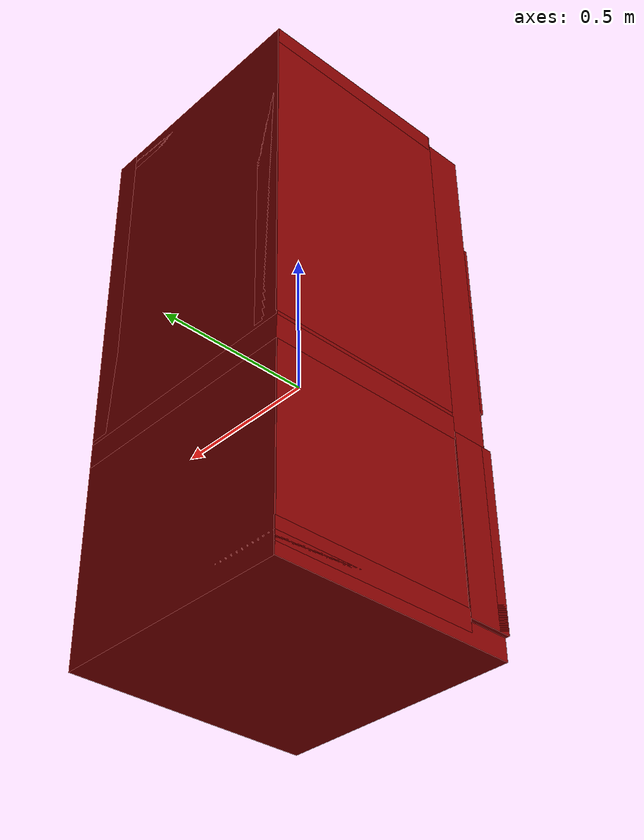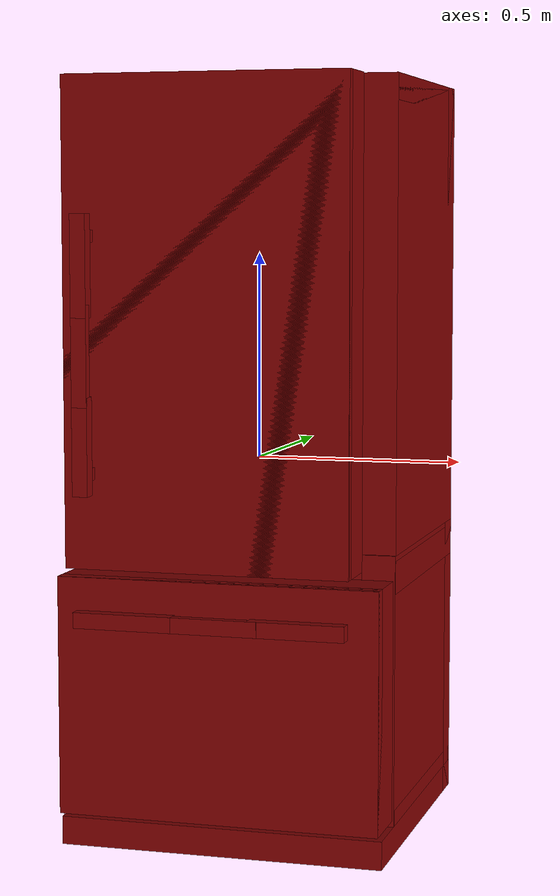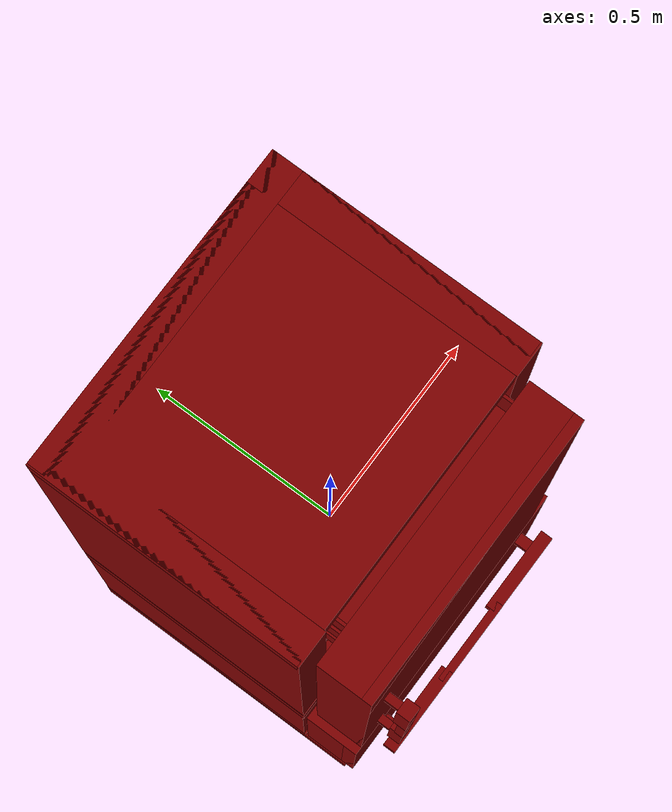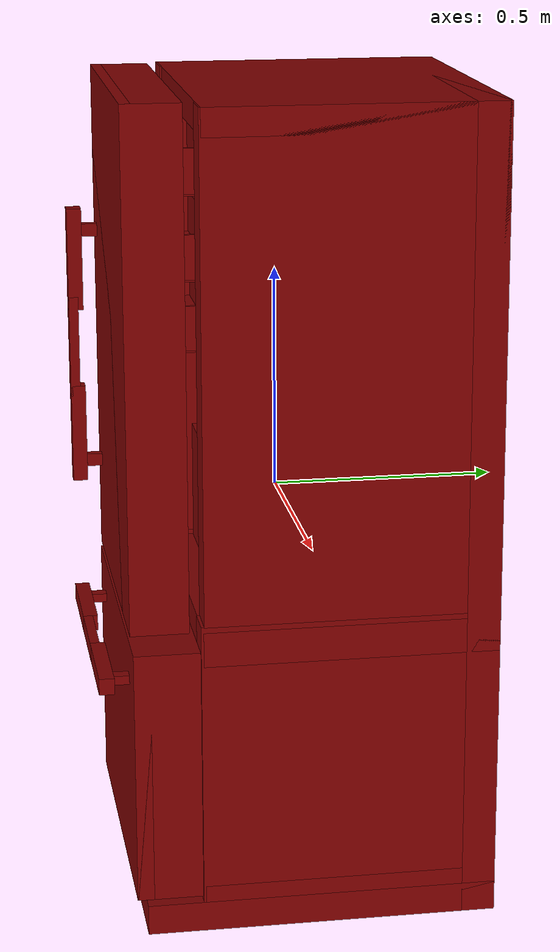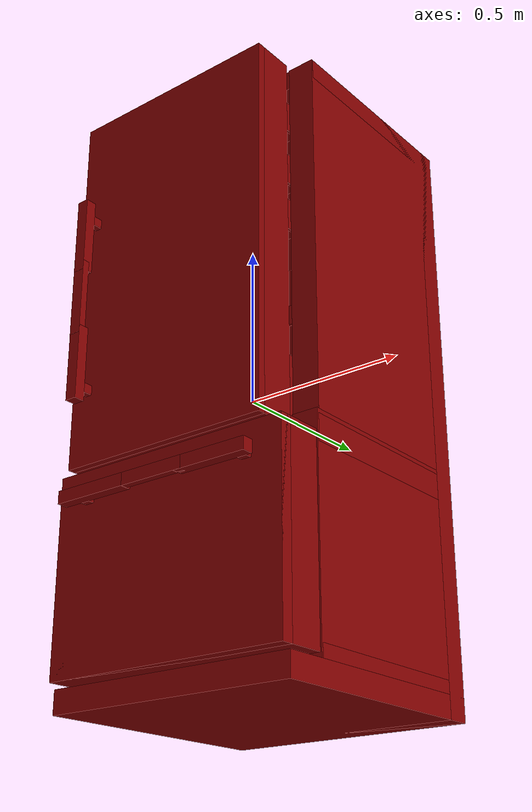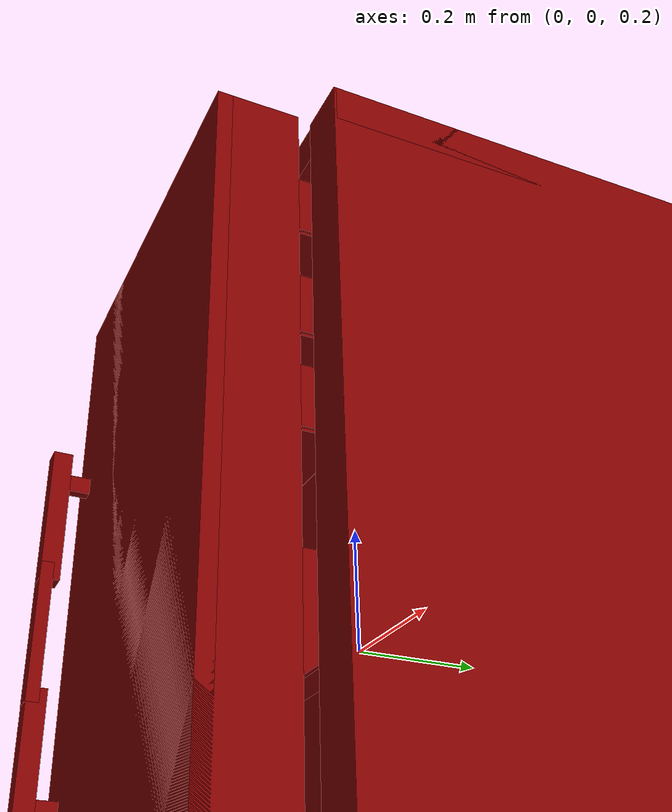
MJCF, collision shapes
<?xml version='1.0' encoding='UTF-8'?>
<mujoco model="model">
  <option timestep="0.002" gravity="0.0 0.0 -9.81"/>
  <compiler angle="radian"/>
  <asset>
    <mesh file="visuals/freezer0.obj" name="freezer0_vis"/>
    <mesh file="visuals/fridge_door.obj" name="fridge_door_vis"/>
    <mesh file="visuals/fridge_door_Clear.obj" name="fridge_door_Clear_vis"/>
    <mesh file="visuals/fridge_drawer0.obj" name="fridge_drawer0_vis"/>
    <mesh file="visuals/Body001.obj" name="Body001_vis"/>
    <mesh file="visuals/Body001_Clear.obj" name="Body001_Clear_vis"/>
    <texture file="visuals/T_BC001.png" name="Body001_material" type="2d"/>
    <material name="Body001_material" rgba="1 1 1 1.0" texture="Body001_material" shininess="0.2512328028678894" specular="0.5"/>
    <texture file="visuals/T_BC001.png" name="freezer0_material" type="2d"/>
    <material name="freezer0_material" rgba="1 1 1 1.0" texture="freezer0_material" shininess="0.2512328028678894" specular="0.5"/>
    <texture file="visuals/T_BC001.png" name="fridge_door_material" type="2d"/>
    <material name="fridge_door_material" rgba="1 1 1 1.0" texture="fridge_door_material" shininess="0.2512328028678894" specular="0.5"/>
    <material name="fridge_door_Clear_material" rgba="1.0 1.0 1.0 0.699999988079071" shininess="0.2512328028678894" specular="0.3103448502657381"/>
    <texture file="visuals/T_BC001.png" name="fridge_drawer0_material" type="2d"/>
    <material name="fridge_drawer0_material" rgba="1 1 1 1.0" texture="fridge_drawer0_material" shininess="0.2512328028678894" specular="0.3103448502657381"/>
    <material name="Body001_Clear_material" rgba="1.0 1.0 1.0 0.699999988079071" shininess="0.2512328028678894" specular="0.3103448502657381"/>
  </asset>
  <default>
    <default class="visual">
      <geom conaffinity="0" contype="0" group="1" type="mesh"/>
    </default>
    <default class="collision">
      <geom group="0" rgba="0.5 0 0 0.5"/>
    </default>
    <default class="spawn">
      <geom group="0" rgba="1 1 1 0.5" contype="0" conaffinity="0"/>
      <site group="0" rgba="1 1 1 0.5"/>
    </default>
    <default class="region">
      <geom group="1" conaffinity="0" contype="0" rgba="0 1 0 0"/>
    </default>
  </default>
  <worldbody>
    <body>
      <body name="object">
        <geom mesh="Body001_vis" type="mesh" solimp="0.998 0.998 0.001" solref="0.001 1" friction="0.95 0.3 0.1" class="visual" material="Body001_material"/>
        <geom class="collision" type="box" pos="-0.00110054 0.12030596 0.50832725" size="0.3160151541233063 0.22527329623699188 0.002585998037829995" quat="1.0 0.0 0.0 0.0"/>
        <geom class="collision" type="box" pos="-0.00110054 0.12030596 0.14084752" size="0.3160169720649719 0.22527436912059784 0.0025859600864350796" quat="1.0 0.0 0.0 0.0"/>
        <geom class="collision" type="box" pos="-0.35064101 0.11106796 0.35758087" size="0.043554212898015976 0.327478289604187 0.5575453042984009" quat="1.0 0.0 0.0 0.0"/>
        <geom class="collision" type="box" pos="0.35243601 0.11106796 0.35758084" size="0.04176001250743866 0.327478289604187 0.5575453042984009" quat="1.0 0.0 0.0 0.0"/>
        <geom class="collision" type="box" pos="0.00000017 0.11299023 0.88424820" size="0.3941958248615265 0.3255560100078583 0.030877990648150444" quat="1.0 0.0 0.0 0.0"/>
        <geom class="collision" type="box" pos="0.00000017 0.11048175 -0.25139293" size="0.3941958248615265 0.328104704618454 0.03903775289654732" quat="1.0 0.0 0.0 0.0"/>
        <geom class="collision" type="box" pos="0.00000017 0.04544089 -0.88098943" size="0.3941958248615265 0.39310532808303833 0.034136686474084854" quat="1.0 0.0 0.0 0.0"/>
        <geom class="collision" type="box" pos="0.00181954 0.40096098 0.00000009" size="0.39237648248672485 0.03758529946208 0.9151260852813721" quat="1.0 0.0 0.0 0.0"/>
        <geom class="collision" type="box" pos="-0.35244274 0.11097650 -0.52309448" size="0.0417507067322731 0.325009286403656 0.32422980666160583" quat="1.0 0.0 0.0 0.0"/>
        <geom class="collision" type="box" pos="0.35395342 0.10631333 -0.52309448" size="0.0402408167719841 0.32967355847358704 0.32423073053359985" quat="1.0 0.0 0.0 0.0"/>
        <geom class="collision" type="box" pos="0.00000017 0.11000278 -0.84313524" size="0.3941958248615265 0.32854342460632324 0.034317295998334885" quat="1.0 0.0 0.0 0.0"/>
        <body name="freezer0">
          <geom class="region" name="reg_freezer0" type="box" pos="-1.9524999999992465e-05 0.04139170000000002 -0.5684354899999999" size="0.28385485499999996 0.24976114 0.20404649999999996"/>
          <joint axis="0.0 -1.0 0.0" pos="-0.00000008 -0.06088511 -0.54664117" limited="true" name="freezer0_door_joint" range="0.0 0.5" type="slide" damping="1" frictionloss="1" armature=".01" stiffness="0.05"/>
          <geom mesh="freezer0_vis" type="mesh" solimp="0.998 0.998 0.001" solref="0.001 1" friction="0.95 0.3 0.1" class="visual" material="freezer0_material"/>
          <geom class="collision" type="box" pos="-0.00037502 -0.29713485 -0.54534519" size="0.39055630564689636 0.07307873666286469 0.28737422823905945" quat="1.0 0.0 0.0 0.0"/>
          <geom class="collision" type="box" pos="-0.00210695 0.03193348 -0.78571272" size="0.305281400680542 0.28568845987319946 0.0030836521182209253" quat="1.0 0.0 0.0 0.0"/>
          <geom class="collision" type="box" pos="0.29810229 0.03193338 -0.57235414" size="0.005081306677311659 0.2856889069080353 0.21644210815429688" quat="1.0 0.0 0.0 0.0"/>
          <geom class="collision" type="box" pos="-0.30231929 0.03193328 -0.57163990" size="0.0050813909620046616 0.2856893837451935 0.21715639531612396" quat="1.0 0.0 0.0 0.0"/>
          <geom class="collision" type="box" pos="-0.00812459 0.31262513 -0.57163990" size="0.29926446080207825 0.005011540371924639 0.21715639531612396" quat="1.0 0.0 0.0 0.0"/>
          <geom class="collision" type="box" pos="-0.00588183 -0.25345499 -0.56185263" size="0.3105520009994507 0.033676039427518845 0.2664894461631775" quat="1.0 0.0 0.0 0.0"/>
          <geom class="collision" type="box" pos="-0.00037502 -0.35173774 -0.54534519" size="0.39055630564689636 0.01847594976425171 0.28737422823905945" quat="1.0 0.0 0.0 0.0" name="freezer0_door_main"/>
          <geom class="collision" type="box" pos="0.00067618 -0.42929274 -0.34798399" size="0.11860767751932144 0.010917962528765202 0.018597321584820747" quat="1.0 0.0 0.0 0.0" name="freezer0_door_handle_main"/>
          <geom class="collision" type="box" pos="-0.27429315 -0.39009408 -0.34744543" size="0.014737782999873161 0.02149774692952633 0.010047155432403088" quat="1.0 0.0 0.0 0.0" name="freezer0_door_handle_4"/>
          <geom class="collision" type="box" pos="0.27921048 -0.39008192 -0.34744540" size="0.014737794175744057 0.021509986370801926 0.010047174990177155" quat="1.0 0.0 0.0 0.0" name="freezer0_door_handle_3"/>
          <geom class="collision" type="box" pos="-0.20664103 -0.42344714 -0.34798402" size="0.11928033828735352 0.016861364245414734 0.018597330898046494" quat="1.0 0.0 0.0 0.0" name="freezer0_door_handle_2"/>
          <geom class="collision" type="box" pos="0.21098395 -0.42295686 -0.34798399" size="0.11543532460927963 0.01686139777302742 0.01859736256301403" quat="1.0 0.0 0.0 0.0" name="freezer0_door_handle_1"/>
        </body>
        <body name="fridge_door">
          <joint axis="0.0 0.0 1.0" pos="0.30957290 -0.29716752 0.36162239" limited="true" name="fridge_door_joint" range="0.0 1.5707963267948966" type="hinge" damping="1" frictionloss="1" armature=".01" stiffness="0.05"/>
          <geom mesh="fridge_door_vis" type="mesh" solimp="0.998 0.998 0.001" solref="0.001 1" friction="0.95 0.3 0.1" class="visual" material="fridge_door_material"/>
          <geom class="collision" type="box" pos="-0.02565050 -0.30487314 0.33860013" size="0.3443422317504883 0.06534027308225632 0.5765008330345154" quat="1.0 0.0 0.0 0.0"/>
          <geom class="collision" type="box" pos="0.01169917 -0.20556875 0.71968281" size="0.2756355404853821 0.0477554053068161 0.00282800430431962" quat="1.0 0.0 0.0 0.0"/>
          <geom class="collision" type="box" pos="0.01169892 -0.15823557 0.76947832" size="0.2756098508834839 0.0033584085758775473 0.048288971185684204" quat="1.0 0.0 0.0 0.0"/>
          <geom class="collision" type="box" pos="0.01169917 -0.25219247 0.76947838" size="0.27563589811325073 0.001194413285702467 0.048295263200998306" quat="1.0 0.0 0.0 0.0"/>
          <geom class="collision" type="box" pos="0.28717229 -0.20487162 0.76947832" size="0.0037614875473082066 0.0475623793900013 0.04829087853431702" quat="1.0 0.0 0.0 0.0"/>
          <geom class="collision" type="box" pos="-0.26577035 -0.20518251 0.76947832" size="0.003705924842506647 0.047562457621097565 0.0482909269630909" quat="1.0 0.0 0.0 0.0"/>
          <geom class="collision" type="box" pos="0.01169892 -0.20556875 0.53798747" size="0.2756364047527313 0.04775580018758774 0.002827972639352083" quat="1.0 0.0 0.0 0.0"/>
          <geom class="collision" type="box" pos="0.01169917 -0.15823557 0.58778298" size="0.2756148874759674 0.003358482616022229 0.04828954115509987" quat="1.0 0.0 0.0 0.0"/>
          <geom class="collision" type="box" pos="0.01169892 -0.25219247 0.58778304" size="0.2756367623806 0.0011944229481741786 0.04829476773738861" quat="1.0 0.0 0.0 0.0"/>
          <geom class="collision" type="box" pos="0.28717229 -0.20487162 0.58778304" size="0.003761500818654895 0.047562770545482635 0.04829113557934761" quat="1.0 0.0 0.0 0.0"/>
          <geom class="collision" type="box" pos="-0.26539859 -0.20518251 0.58778304" size="0.0033341876696795225 0.0475628487765789 0.04829118773341179" quat="1.0 0.0 0.0 0.0"/>
          <geom class="collision" type="box" pos="0.01169917 -0.20537352 0.38582379" size="0.27563726902008057 0.04775619134306908 0.002827927004545927" quat="1.0 0.0 0.0 0.0"/>
          <geom class="collision" type="box" pos="0.01169892 -0.15638610 0.43561924" size="0.2756199538707733 0.003358556656166911 0.048290058970451355" quat="1.0 0.0 0.0 0.0"/>
          <geom class="collision" type="box" pos="0.01169917 -0.25096384 0.43561926" size="0.2756376266479492 0.0011944326106458902 0.04829425737261772" quat="1.0 0.0 0.0 0.0"/>
          <geom class="collision" type="box" pos="0.28717229 -0.20467638 0.43561926" size="0.0037615185137838125 0.04756316542625427 0.048291388899087906" quat="1.0 0.0 0.0 0.0"/>
          <geom class="collision" type="box" pos="-0.26539859 -0.20498728 0.43561926" size="0.003334202105179429 0.04756324365735054 0.048291441053152084" quat="1.0 0.0 0.0 0.0"/>
          <geom class="collision" type="box" pos="-0.02565050 -0.35825608 0.33860013" size="0.3443422317504883 0.011957339011132717 0.5765187740325928" quat="1.0 0.0 0.0 0.0" name="fridge_door_main"/>
          <geom class="collision" type="box" pos="-0.30540860 -0.42929283 0.26825228" size="0.018597498536109924 0.01091788150370121 0.11860646307468414" quat="1.0 0.0 0.0 0.0" name="fridge_door_handle_main"/>
          <geom class="collision" type="box" pos="-0.30487007 -0.39009423 0.54322165" size="0.010047227144241333 0.021497607231140137 0.014737635850906372" quat="1.0 0.0 0.0 0.0" name="fridge_door_handle_4"/>
          <geom class="collision" type="box" pos="-0.30486998 -0.39008198 -0.01028200" size="0.010047230869531631 0.021509822458028793 0.014737662859261036" quat="1.0 0.0 0.0 0.0" name="fridge_door_handle_3"/>
          <geom class="collision" type="box" pos="-0.30540866 -0.42344726 0.47556952" size="0.01859741099178791 0.016861284151673317 0.11927948147058487" quat="1.0 0.0 0.0 0.0" name="fridge_door_handle_2"/>
          <geom class="collision" type="box" pos="-0.30540860 -0.42295692 0.05794454" size="0.018597416579723358 0.016861317679286003 0.11543459445238113" quat="1.0 0.0 0.0 0.0" name="fridge_door_handle_1"/>
          <body name="fridge_door_Clear">
            <geom mesh="fridge_door_Clear_vis" type="mesh" solimp="0.998 0.998 0.001" solref="0.001 1" friction="0.95 0.3 0.1" class="visual" material="fridge_door_Clear_material"/>
            <geom class="collision" type="box" pos="0.01169917 -0.20556875 0.71968281" size="0.2756355404853821 0.0477554053068161 0.00282800430431962" quat="1.0 0.0 0.0 0.0"/>
            <geom class="collision" type="box" pos="0.01169892 -0.15823557 0.76947832" size="0.2756098508834839 0.0033584085758775473 0.048288971185684204" quat="1.0 0.0 0.0 0.0"/>
            <geom class="collision" type="box" pos="0.01169917 -0.25219247 0.76947838" size="0.27563589811325073 0.001194413285702467 0.048295263200998306" quat="1.0 0.0 0.0 0.0"/>
            <geom class="collision" type="box" pos="0.28717229 -0.20487162 0.76947832" size="0.0037614875473082066 0.0475623793900013 0.04829087853431702" quat="1.0 0.0 0.0 0.0"/>
            <geom class="collision" type="box" pos="-0.26577035 -0.20518251 0.76947832" size="0.003705924842506647 0.047562457621097565 0.0482909269630909" quat="1.0 0.0 0.0 0.0"/>
            <geom class="collision" type="box" pos="0.01169892 -0.20556875 0.53798747" size="0.2756364047527313 0.04775580018758774 0.002827972639352083" quat="1.0 0.0 0.0 0.0"/>
            <geom class="collision" type="box" pos="0.01169917 -0.15823557 0.58778298" size="0.2756148874759674 0.003358482616022229 0.04828954115509987" quat="1.0 0.0 0.0 0.0"/>
            <geom class="collision" type="box" pos="0.01169892 -0.25219247 0.58778304" size="0.2756367623806 0.0011944229481741786 0.04829476773738861" quat="1.0 0.0 0.0 0.0"/>
            <geom class="collision" type="box" pos="0.28717229 -0.20487162 0.58778304" size="0.003761500818654895 0.047562770545482635 0.04829113557934761" quat="1.0 0.0 0.0 0.0"/>
            <geom class="collision" type="box" pos="-0.26539859 -0.20518251 0.58778304" size="0.0033341876696795225 0.0475628487765789 0.04829118773341179" quat="1.0 0.0 0.0 0.0"/>
            <geom class="collision" type="box" pos="0.01169917 -0.20537352 0.38582379" size="0.27563726902008057 0.04775619134306908 0.002827927004545927" quat="1.0 0.0 0.0 0.0"/>
            <geom class="collision" type="box" pos="0.01169892 -0.15638610 0.43561924" size="0.2756199538707733 0.003358556656166911 0.048290058970451355" quat="1.0 0.0 0.0 0.0"/>
            <geom class="collision" type="box" pos="0.01169917 -0.25096384 0.43561926" size="0.2756376266479492 0.0011944326106458902 0.04829425737261772" quat="1.0 0.0 0.0 0.0"/>
            <geom class="collision" type="box" pos="0.28717229 -0.20467638 0.43561926" size="0.0037615185137838125 0.04756316542625427 0.048291388899087906" quat="1.0 0.0 0.0 0.0"/>
            <geom class="collision" type="box" pos="-0.26539859 -0.20498728 0.43561926" size="0.003334202105179429 0.04756324365735054 0.048291441053152084" quat="1.0 0.0 0.0 0.0"/>
          </body>
        </body>
        <body name="fridge_drawer0">
          <geom class="region" name="reg_fridge_drawer0" type="box" pos="-0.03392187499999999 0.09959784999999999 -0.07074646000000001" size="0.237554255 0.226383 0.11538429"/>
          <joint axis="0.0 -1.0 0.0" pos="-0.00359078 0.09611742 -0.06994392" limited="true" name="fridge_drawer0_joint" range="0.0 0.5" type="slide" damping="1" frictionloss="1" armature=".01" stiffness="0.05"/>
          <geom mesh="fridge_drawer0_vis" type="mesh" solimp="0.998 0.998 0.001" solref="0.001 1" friction="0.95 0.3 0.1" class="visual" material="fridge_drawer0_material"/>
          <geom class="collision" type="box" pos="-0.03224403 0.34286764 -0.07474730" size="0.2487403154373169 0.0033921748399734497 0.12481791526079178" quat="1.0 0.0 0.0 0.0"/>
          <geom class="collision" type="box" pos="-0.28370825 0.09837096 -0.07474730" size="0.004088321700692177 0.2407524585723877 0.12481740862131119" quat="1.0 0.0 0.0 0.0"/>
          <geom class="collision" type="box" pos="0.21289402 0.09837096 -0.07474730" size="0.003744961926713586 0.24075163900852203 0.12481686472892761" quat="1.0 0.0 0.0 0.0"/>
          <geom class="collision" type="box" pos="-0.03568029 0.09837096 -0.19610521" size="0.24873784184455872 0.24075078964233398 0.0032003442756831646" quat="1.0 0.0 0.0 0.0"/>
          <geom class="collision" type="box" pos="-0.03481936 -0.14457802 -0.06993171" size="0.06439434736967087 0.005427333060652018 0.03301795572042465" quat="0.9871617555618286 -0.15972371399402618 0.0 0.0"/>
          <geom class="collision" type="box" pos="-0.19242162 -0.14471734 -0.06782035" size="0.09321124106645584 0.010428482666611671 0.13916197419166565" quat="1.0 0.0 0.0 0.0"/>
          <geom class="collision" type="box" pos="-0.05735014 -0.14471734 -0.15661764" size="0.0643964558839798 0.010428446345031261 0.05014832690358162" quat="1.0 0.0 0.0 0.0"/>
          <geom class="collision" type="box" pos="-0.03481934 -0.14471734 0.01680531" size="0.06439631432294846 0.010428435169160366 0.054533787071704865" quat="1.0 0.0 0.0 0.0"/>
          <geom class="collision" type="box" pos="0.12354412 -0.14471734 -0.06782035" size="0.09397219121456146 0.010428428649902344 0.1391611248254776" quat="1.0 0.0 0.0 0.0"/>
          <geom class="collision" type="box" pos="-0.03481937 -0.13608006 -0.07124623" size="0.06439433991909027 0.0022927906829863787 0.03352512791752815" quat="1.0 0.0 0.0 0.0"/>
        </body>
        <body name="Body001_Clear">
          <geom mesh="Body001_Clear_vis" type="mesh" solimp="0.998 0.998 0.001" solref="0.001 1" friction="0.95 0.3 0.1" class="visual" material="Body001_Clear_material"/>
          <geom class="collision" type="box" pos="-0.00110054 0.12030596 0.50832725" size="0.3160151541233063 0.22527329623699188 0.002585998037829995" quat="1.0 0.0 0.0 0.0"/>
          <geom class="collision" type="box" pos="-0.00110054 0.12030596 0.14084752" size="0.3160169720649719 0.22527436912059784 0.0025859600864350796" quat="1.0 0.0 0.0 0.0"/>
        </body>
        <geom class="region" name="reg_fridge_shelf1" type="box" pos="0.001599039999999996 0.12190553000000001 0.681917635" size="0.30186732 0.21961494 0.163857325"/>
        <geom class="region" name="reg_fridge_shelf0" type="box" pos="0.001599039999999996 0.12174538500000001 0.323797805" size="0.30186732 0.219072815 0.172909315"/>
        <geom class="region" name="reg_main" type="box" pos="4.100000000062387e-07 0.03299498499999998 0.0" size="0.39881001 0.406552625 0.91612614"/>
      </body>
    </body>
  </worldbody>
  <actuator>
    <motor name="freezer0_door_joint_actuator" joint="freezer0_door_joint" gear="50"/>
    <motor name="fridge_door_joint_actuator" joint="fridge_door_joint" gear="50"/>
    <motor name="fridge_drawer0_joint_actuator" joint="fridge_drawer0_joint" gear="50"/>
  </actuator>
</mujoco>
